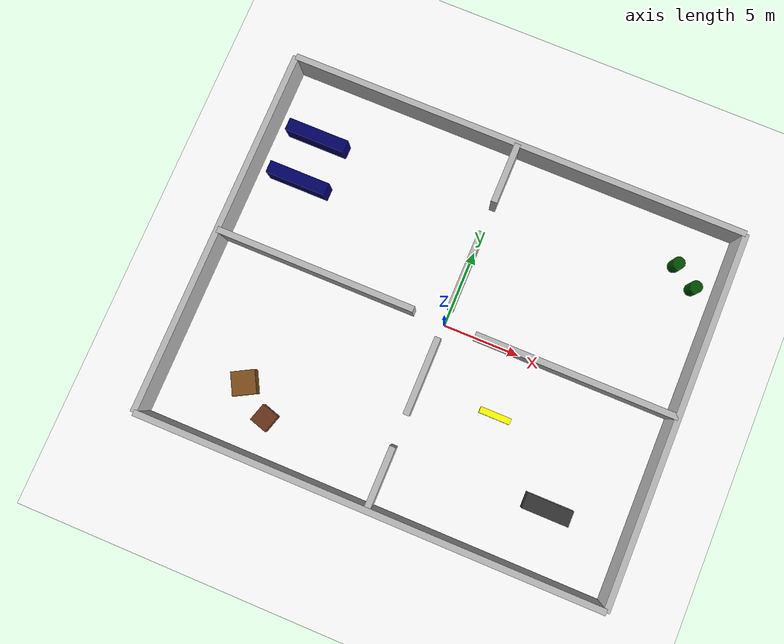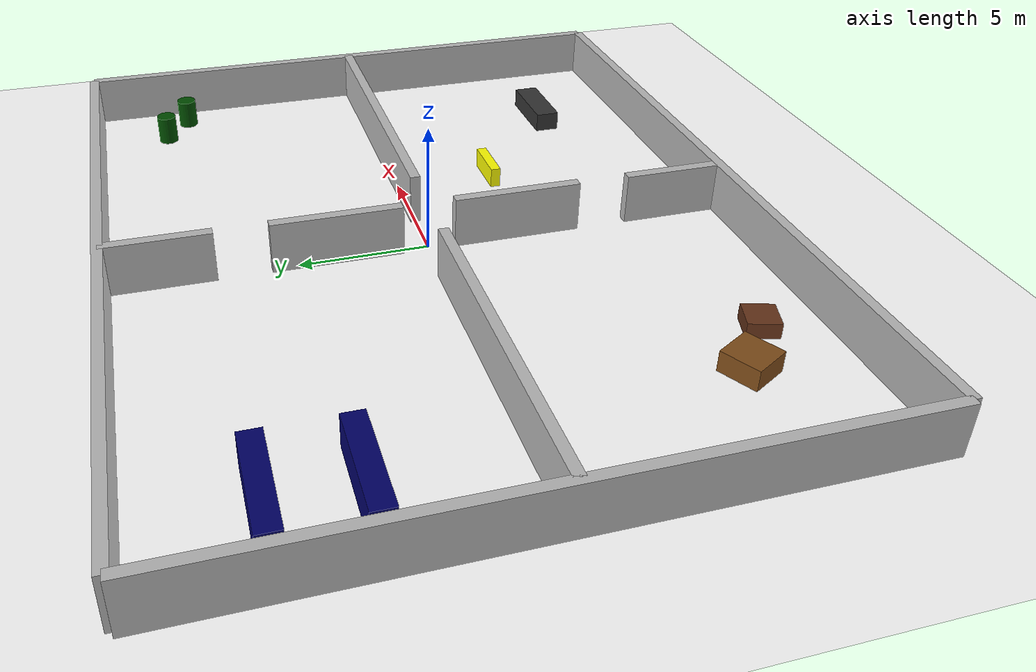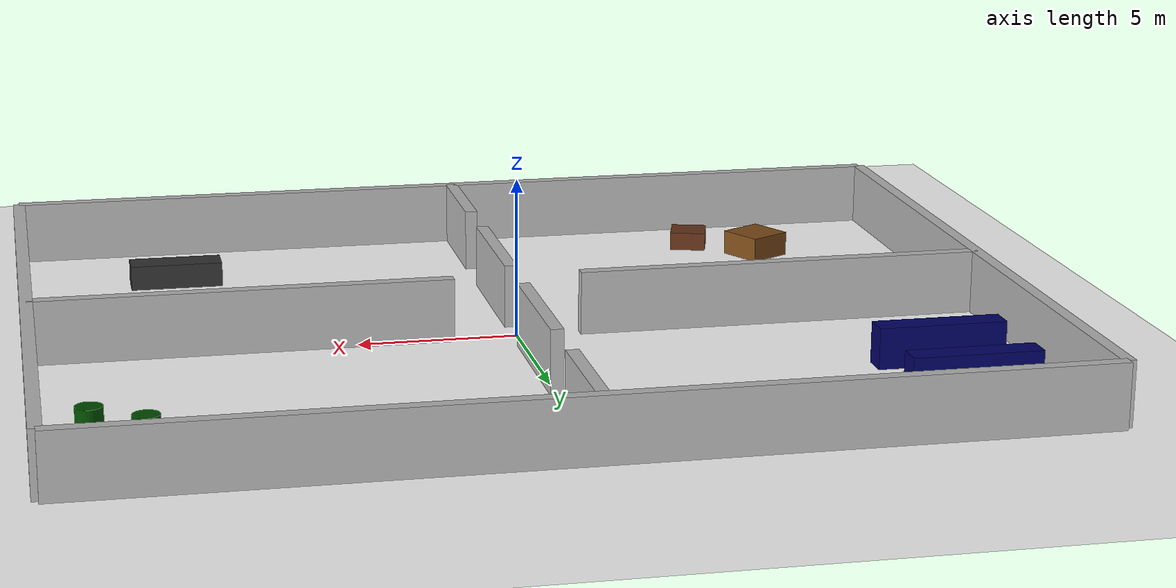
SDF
<?xml version="1.0" ?>
<sdf version="1.7">
  <world name="warehouse_world">

    <!-- 1. HỆ THỐNG PLUGINS (GIỮ NGUYÊN BẢN CHUẨN CỦA BÁC) -->
    <plugin name='gz::sim::systems::Physics' filename='ignition-gazebo-physics-system'/>
    <plugin name='gz::sim::systems::UserCommands' filename='ignition-gazebo-user-commands-system'/>
    <plugin name='gz::sim::systems::SceneBroadcaster' filename='ignition-gazebo-scene-broadcaster-system'/>
    <plugin name='gz::sim::systems::Contact' filename='ignition-gazebo-contact-system'/>
    <plugin filename="ignition-gazebo-imu-system" name="ignition::gazebo::systems::Imu">
    </plugin>
    <plugin filename="ignition-gazebo-sensors-system" name="ignition::gazebo::systems::Sensors">
      <render_engine>ogre2</render_engine>
    </plugin>

    <!-- Sun -->
    <light type="directional" name="sun">
      <cast_shadows>true</cast_shadows>
      <pose>0 0 10 0 0 0</pose>
      <diffuse>1 1 1 1</diffuse>
      <direction>-0.5 0.5 -1</direction>
    </light>

    <!-- Floor (Nền trắng bác chọn nhìn rất sạch sẽ) -->
    <model name="white_floor">
      <static>true</static>
      <pose>0 0 0 0 0 0</pose>
      <link name="floor_link">
        <collision name="collision">
          <geometry>
            <plane>
              <normal>0 0 1</normal>
              <size>40 40</size>
            </plane>
          </geometry>
          <!-- Thêm thuộc tính bề mặt và ma sát tại đây -->
          <surface>
            <friction>
              <ode>
                <mu>100.0</mu>    <!-- Hệ số ma sát dọc -->
                <mu2>50.0</mu2>   <!-- Hệ số ma sát ngang -->
              </ode>
            </friction>
          </surface>
        </collision>
        <visual name="visual">
          <geometry>
            <plane>
              <normal>0 0 1</normal>
              <size>40 40</size>
            </plane>
          </geometry>
          <material>
            <ambient>1 1 1 1</ambient>
            <diffuse>1 1 1 1</diffuse>
          </material>
        </visual>
      </link>
    </model>

    <!-- 2. HỆ THỐNG TƯỜNG BAO & TƯỜNG NGĂN (GIỮ NGUYÊN) -->
    <model name="outer_walls"><static>true</static>
      <link name="l">
        <collision name="n"><pose>0 12 1 0 0 0</pose><geometry><box><size>30 0.4 2</size></box></geometry></collision>
        <visual name="vn"><pose>0 12 1 0 0 0</pose><geometry><box><size>30 0.4 2</size></box></geometry></visual>
        <collision name="s"><pose>0 -12 1 0 0 0</pose><geometry><box><size>30 0.4 2</size></box></geometry></collision>
        <visual name="vs"><pose>0 -12 1 0 0 0</pose><geometry><box><size>30 0.4 2</size></box></geometry></visual>
        <collision name="e"><pose>15 0 1 0 0 0</pose><geometry><box><size>0.4 24 2</size></box></geometry></collision>
        <visual name="ve"><pose>15 0 1 0 0 0</pose><geometry><box><size>0.4 24 2</size></box></geometry></visual>
        <collision name="w"><pose>-15 0 1 0 0 0</pose><geometry><box><size>0.4 24 2</size></box></geometry></collision>
        <visual name="vw"><pose>-15 0 1 0 0 0</pose><geometry><box><size>0.4 24 2</size></box></geometry></visual>
      </link>
    </model>

    <model name="internal_walls"><static>true</static>
      <link name="l">
        <collision name="ml"><pose>-8.5 0 1 0 0 0</pose><geometry><box><size>13 0.4 2</size></box></geometry></collision>
        <visual name="vml"><pose>-8.5 0 1 0 0 0</pose><geometry><box><size>13 0.4 2</size></box></geometry></visual>
        <collision name="mr"><pose>8.5 0 1 0 0 0</pose><geometry><box><size>13 0.4 2</size></box></geometry></collision>
        <visual name="vmr"><pose>8.5 0 1 0 0 0</pose><geometry><box><size>13 0.4 2</size></box></geometry></visual>
        <collision name="vt"><pose>0 10 1 0 0 0</pose><geometry><box><size>0.4 4 2</size></box></geometry></collision>
        <visual name="vvt"><pose>0 10 1 0 0 0</pose><geometry><box><size>0.4 4 2</size></box></geometry></visual>
        <collision name="vu"><pose>0 3.5 1 0 0 0</pose><geometry><box><size>0.4 5 2</size></box></geometry></collision>
        <visual name="vvu"><pose>0 3.5 1 0 0 0</pose><geometry><box><size>0.4 5 2</size></box></geometry></visual>
        <collision name="vl"><pose>0 -3.5 1 0 0 0</pose><geometry><box><size>0.4 5 2</size></box></geometry></collision>
        <visual name="vvl"><pose>0 -3.5 1 0 0 0</pose><geometry><box><size>0.4 5 2</size></box></geometry></visual>
        <collision name="vb"><pose>0 -10 1 0 0 0</pose><geometry><box><size>0.4 4 2</size></box></geometry></collision>
        <visual name="vvb"><pose>0 -10 1 0 0 0</pose><geometry><box><size>0.4 4 2</size></box></geometry></visual>
      </link>
    </model>

    <!-- 3. PHẦN THÊM MỚI: CHI TIẾT NỘI THẤT KHO HÀNG (OFFLINE)     -->

    <!-- Cụm Kệ hàng (Shelves) - Màu xanh dương đậm -->
    <model name="shelves_area">
      <static>true</static>
      <link name="link">
        <collision name="s1"><pose>-12 8 0.5 0 0 0</pose><geometry><box><size>4 0.8 1.5</size></box></geometry></collision>
        <visual name="v1"><pose>-12 8 0.5 0 0 0</pose><geometry><box><size>4 0.8 1.5</size></box></geometry>
          <material><ambient>0 0 0.4 1</ambient><diffuse>0 0 0.4 1</diffuse></material></visual>

        <collision name="s2"><pose>-12 5 0.5 0 0 0</pose><geometry><box><size>4 0.8 1.5</size></box></geometry></collision>
        <visual name="v2"><pose>-12 5 0.5 0 0 0</pose><geometry><box><size>4 0.8 1.5</size></box></geometry>
          <material><ambient>0 0 0.4 1</ambient><diffuse>0 0 0.4 1</diffuse></material></visual>
      </link>
    </model>

    <!-- Cụm Thùng phuy (Barrels) - Màu xanh lá cây -->
    <model name="barrels_area">
      <static>true</static>
      <link name="link">
        <collision name="b1"><pose>12 9 0.6 0 0 0</pose><geometry><cylinder><radius>0.4</radius><length>1.2</length></cylinder></geometry></collision>
        <visual name="vb1"><pose>12 9 0.6 0 0 0</pose><geometry><cylinder><radius>0.4</radius><length>1.2</length></cylinder></geometry>
          <material><ambient>0 0.3 0 1</ambient><diffuse>0 0.3 0 1</diffuse></material></visual>

        <collision name="b2"><pose>13.5 8 0.6 0 0 0</pose><geometry><cylinder><radius>0.4</radius><length>1.2</length></cylinder></geometry></collision>
        <visual name="vb2"><pose>13.5 8 0.6 0 0 0</pose><geometry><cylinder><radius>0.4</radius><length>1.2</length></cylinder></geometry>
          <material><ambient>0 0.3 0 1</ambient><diffuse>0 0.3 0 1</diffuse></material></visual>
      </link>
    </model>

    <!-- Đống hàng hóa (Cargo) - Màu nâu gỗ -->
    <model name="cargo_stack">
      <static>true</static>
      <link name="link">
        <collision name="c1"><pose>-10 -8 0.4 0 0 0.5</pose><geometry><box><size>1.5 1.5 0.8</size></box></geometry></collision>
        <visual name="vc1"><pose>-10 -8 0.4 0 0 0.5</pose><geometry><box><size>1.5 1.5 0.8</size></box></geometry>
          <material><ambient>0.5 0.3 0.1 1</ambient><diffuse>0.5 0.3 0.1 1</diffuse></material></visual>

        <collision name="c2"><pose>-8 -9.5 0.3 0 0 -0.3</pose><geometry><box><size>1.2 1.2 0.6</size></box></geometry></collision>
        <visual name="vc2"><pose>-8 -9.5 0.3 0 0 -0.3</pose><geometry><box><size>1.2 1.2 0.6</size></box></geometry>
          <material><ambient>0.4 0.2 0.1 1</ambient><diffuse>0.4 0.2 0.1 1</diffuse></material></visual>
      </link>
    </model>

    <!-- Bàn kỹ thuật (Workbench) - Màu xám đậm -->
    <model name="workbench">
      <static>true</static>
      <pose>10 -8 0.4 0 0 0</pose>
      <link name="link">
        <collision name="c"><geometry><box><size>3 1 0.8</size></box></geometry></collision>
        <visual name="v"><geometry><box><size>3 1 0.8</size></box></geometry>
          <material><ambient>0.2 0.2 0.2 1</ambient><diffuse>0.2 0.2 0.2 1</diffuse></material></visual>
      </link>
    </model>

    <!-- Gờ giảm tốc test IMU (Màu vàng sáng) -->
    <model name="speed_bumps">
      <static>true</static>
      <link name="link">
        <collision name="b1"><pose>5 -4 0.02 0 0 0</pose><geometry><box><size>2 0.4 1.5</size></box></geometry></collision>
        <visual name="vb1"><pose>5 -4 0.02 0 0 0</pose><geometry><box><size>2 0.4 1.5</size></box></geometry>
          <material><ambient>1 1 0 1</ambient><diffuse>1 1 0 1</diffuse></material></visual>
      </link>
    </model>

  </world>
</sdf>
